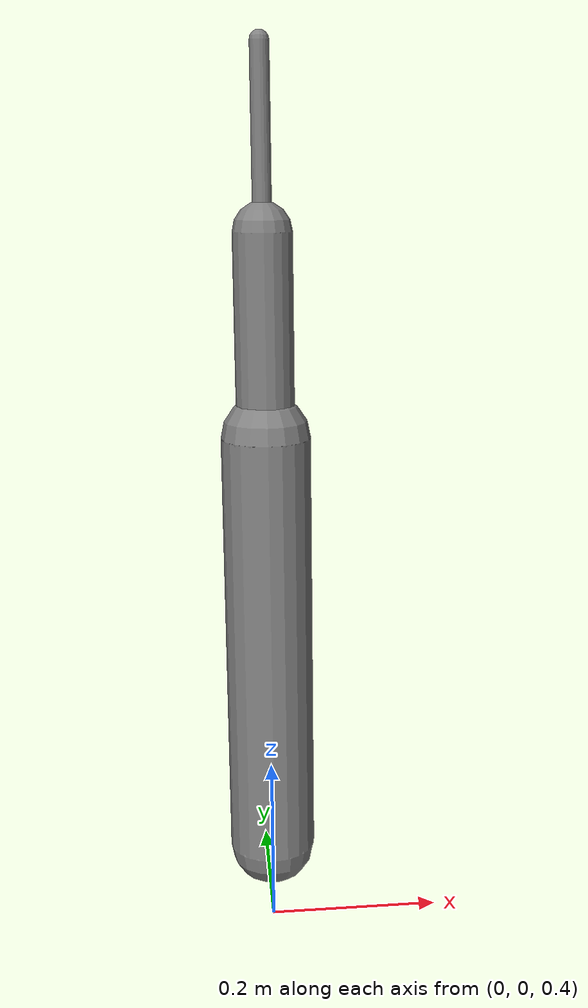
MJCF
<?xml version='1.0' encoding='UTF-8'?>
<mujoco model="RobotModel">
  <option gravity="0 0 -9.81" timestep="0.002" solver="CG" iterations="500" integrator="Euler"/>
  <worldbody>
    <geom name="Floor" type="plane" size="10 10 0.1" pos="0 0 0" rgba="0.8 0.8 0.8 1"/>
    <body name="Limb0" pos="0 0 0.5">
      <geom type="capsule" fromto="0 0 0 0 0 0.5" size="0.05" density="1000" contype="0" conaffinity="0"/>
      <body name="Limb0_5d83759f" pos="0 0 0.5">
        <geom type="capsule" fromto="0 0 0 0 0 0.22442671309083692" size="0.03248410476950963" density="800" contype="0" conaffinity="0"/>
        <body name="Limb1_5d83759f" pos="0 0 0.22442671309083692">
          <geom type="capsule" fromto="0 0 0 0 0 0.19280471314874564" size="0.010441539300052507" density="800" contype="0" conaffinity="0"/>
          <joint name="Joint_Limb0_5d83759f_Limb1_5d83759f_0" type="hinge" axis="0 1 0" range="-60 60"/>
        </body>
        <joint name="Joint_Limb0_Limb0_5d83759f_0" type="hinge" axis="1 0 0" range="-60 60"/>
      </body>
      <body name="Limb2_5d83759f" pos="0 0 0.5">
        <geom type="capsule" fromto="0 0 0 0 0 0.21377882663057102" size="0.013975498652709799" density="800" contype="0" conaffinity="0"/>
        <joint name="Joint_Limb0_Limb2_5d83759f_0" type="hinge" axis="1 0 0" range="-60 60"/>
      </body>
    </body>
  </worldbody>
  <actuator>
    <position name="position_Actuator_Joint_Limb0_Limb0_5d83759f_0" joint="Joint_Limb0_Limb0_5d83759f_0" gear="1.0"/>
    <position name="position_Actuator_Joint_Limb0_5d83759f_Limb1_5d83759f_0" joint="Joint_Limb0_5d83759f_Limb1_5d83759f_0" gear="1.0"/>
    <position name="position_Actuator_Joint_Limb0_Limb2_5d83759f_0" joint="Joint_Limb0_Limb2_5d83759f_0" gear="1.0"/>
  </actuator>
</mujoco>
